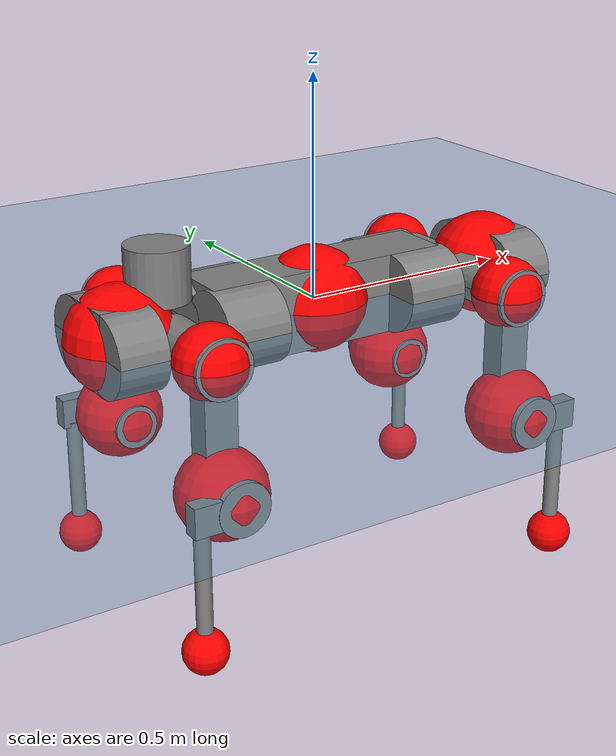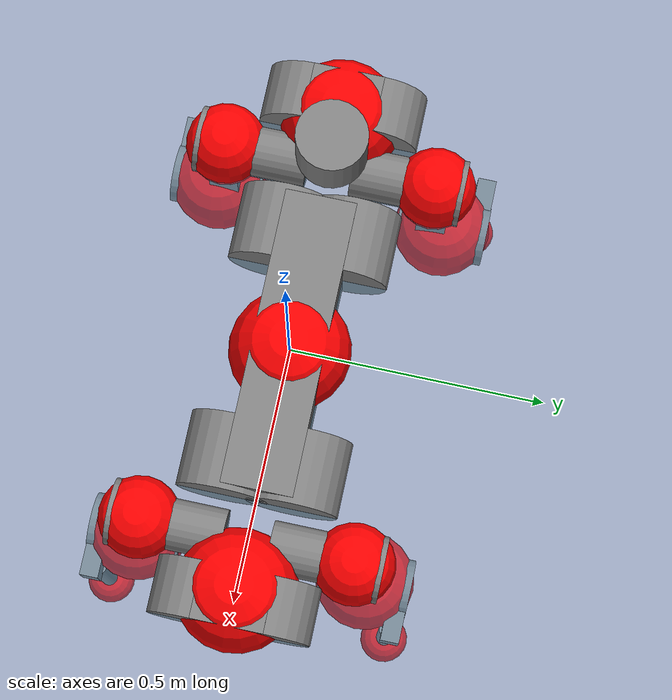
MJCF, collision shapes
<mujoco model="anymal_c">
  <compiler angle="radian" assetdir="assets" balanceinertia="true" inertiafromgeom="false"/>

  <option timestep="0.005" density="1.2" viscosity="2e-05"/>

  <size nkey="1"/>

  <visual>
    <quality shadowsize="8192"/>
    <map shadowclip="0.5"/>
  </visual>

  <default>
    <default class="/">
      <material specular="0" shininess="0.25"/>
      <geom contype="0" conaffinity="0" group="1" solref="-1000 -80"/>
      <site size="0.01 0.005 0.005" group="5"/>
      <general forcelimited="true" forcerange="-80 80" biastype="affine" gainprm="80" biasprm="0 -80 -2"/>
      <default class="anymal_c">
        <joint armature="0.01" damping="0.01" frictionloss="0.1"/>
        <default class="visual">
          <geom type="mesh" group="2"/>
          <default class="visual_zflip"/>
        </default>
        <default class="collision">
          <geom type="cylinder" group="3"/>
          <default class="foot">
            <geom size="0.03 0 0" type="sphere" condim="6" priority="1" friction="0.8 0.02 0.01" solimp="0.015 1 0.03"/>
          </default>
        </default>
      </default>
      <default class="reward_collision_sphere">
        <geom group="5" rgba="1 0 0 1"/>
      </default>
    </default>
  </default>

  <asset>
    <texture type="skybox" colorspace="auto" name="//unnamed_texture_0" builtin="gradient" rgb1="0.95 0.95 0.95" rgb2="0.95 0.95 0.95" width="100" height="600"/>
    <texture type="2d" colorspace="auto" name="texplane" builtin="checker" rgb1="0.345 0.575 0.748" rgb2="0.345 0.575 0.748" markrgb="1 1 1" width="512" height="512"/>
    <texture type="2d" colorspace="linear" name="base" file="base.png"/>
    <texture type="2d" colorspace="linear" name="top_shell" file="top_shell.png"/>
    <texture type="2d" colorspace="linear" name="bottom_shell" file="bottom_shell.png"/>
    <texture type="2d" colorspace="linear" name="remote" file="remote.png"/>
    <texture type="2d" colorspace="linear" name="hatch" file="hatch.png"/>
    <texture type="2d" colorspace="linear" name="handle" file="handle.png"/>
    <texture type="2d" colorspace="linear" name="face" file="face.png"/>
    <texture type="2d" colorspace="linear" name="battery" file="battery.png"/>
    <texture type="2d" colorspace="linear" name="lidar_cage" file="lidar_cage.png"/>
    <texture type="2d" colorspace="linear" name="depth_camera" file="depth_camera.png"/>
    <texture type="2d" colorspace="linear" name="wide_angle_camera" file="wide_angle_camera.png"/>
    <texture type="2d" colorspace="linear" name="lidar" file="lidar.png"/>
    <texture type="2d" colorspace="linear" name="drive" file="drive.png"/>
    <texture type="2d" colorspace="linear" name="hip_l" file="hip_l.png"/>
    <texture type="2d" colorspace="linear" name="shank_l" file="shank_l.png"/>
    <texture type="2d" colorspace="linear" name="foot" file="foot.png"/>
    <texture type="2d" colorspace="linear" name="thigh" file="thigh.png"/>
    <texture type="2d" colorspace="linear" name="shank_r" file="shank_r.png"/>
    <texture type="2d" colorspace="linear" name="hip_r" file="hip_r.png"/>
    <material name="MatPlane" class="/" texture="texplane" texuniform="true" texrepeat="2 2" specular="0.9" shininess="0.5"/>
    <material name="black_plastic" class="/" rgba="0.007 0.007 0.007 1"/>
    <material name="green" class="/" rgba="0.052 0.178 0.033 1"/>
    <material name="red" class="/" rgba="0.178 0.006 0.005 1"/>
    <material name="yellow" class="/" rgba="0.178 0.119 0.006 1"/>
    <material name="lwl" class="/" rgba="0.8 0.8 0.8 1"/>
    <material name="base" class="/" texture="base"/>
    <material name="top_shell" class="/" texture="top_shell"/>
    <material name="bottom_shell" class="/" texture="bottom_shell"/>
    <material name="hip_l" class="/" texture="hip_l"/>
    <material name="thigh" class="/" texture="thigh"/>
    <material name="shank_l" class="/" texture="shank_l"/>
    <material name="foot" class="/" texture="foot"/>
    <material name="hip_r" class="/" texture="hip_r"/>
    <material name="shank" class="/" texture="shank_r"/>
    <material name="hatch" class="/" texture="hatch"/>
    <material name="remote" class="/" texture="remote"/>
    <material name="handle" class="/" texture="handle"/>
    <material name="face" class="/" texture="face"/>
    <material name="depth_camera" class="/" texture="depth_camera"/>
    <material name="wide_angle_camera" class="/" texture="wide_angle_camera"/>
    <material name="battery" class="/" texture="battery"/>
    <material name="lidar_cage" class="/" texture="lidar_cage"/>
    <material name="lidar" class="/" texture="lidar"/>
    <material name="drive" class="/" texture="drive"/>
    <mesh name="base_0" class="/" file="base_0.obj"/>
    <mesh name="base_1" class="/" file="base_1.obj"/>
    <mesh name="base_2" class="/" file="base_2.obj"/>
    <mesh name="base_3" class="/" file="base_3.obj"/>
    <mesh name="base_4" class="/" file="base_4.obj"/>
    <mesh name="base_5" class="/" file="base_5.obj"/>
    <mesh name="top_shell" class="/" file="top_shell.obj"/>
    <mesh name="bottom_shell" class="/" file="bottom_shell.obj"/>
    <mesh name="remote" class="/" file="remote.obj"/>
    <mesh name="handle" class="/" file="handle.obj"/>
    <mesh name="face" class="/" file="face.obj"/>
    <mesh name="wide_angle_camera" class="/" file="wide_angle_camera.obj"/>
    <mesh name="depth_camera" class="/" file="depth_camera.obj"/>
    <mesh name="battery" class="/" file="battery.obj"/>
    <mesh name="lidar_cage" class="/" file="lidar_cage.obj"/>
    <mesh name="lidar" class="/" file="lidar.obj"/>
    <mesh name="drive" class="/" file="drive.obj"/>
    <mesh name="hip_l" class="/" file="hip_l.obj"/>
    <mesh name="thigh" class="/" file="thigh.obj"/>
    <mesh name="shank_l" class="/" file="shank_l.obj"/>
    <mesh name="foot" class="/" file="foot.obj"/>
    <mesh name="hip_r" class="/" file="hip_r.obj"/>
    <mesh name="hatch" class="/" file="hatch.obj"/>
    <mesh name="shank_r" class="/" file="shank_r.obj"/>
  </asset>

  <worldbody>
    <geom name="floor" class="/" size="100 100 0.125" type="plane" group="0" material="MatPlane"/>
    <light name="toplight_shadow" class="/" pos="0 0 5" dir="0.0990148 0.0990148 -0.990148" type="directional" ambient="0.04 0.04 0.04" diffuse="0.55 0.55 0.55" specular="0.12 0.12 0.12"/>
    <light name="toplight_fill" class="/" pos="0 0 5" dir="0.0990148 0.0990148 -0.990148" type="directional" castshadow="false" ambient="0.04 0.04 0.04" diffuse="0.3 0.3 0.3" specular="0.08 0.08 0.08"/>
    <body name="trunk" childclass="anymal_c" pos="0.000680027 0.000128391 -0.00101581" quat="1 -0.000429325 -0.000123061 7.197e-05">
      <inertial pos="7.2531e-05 -0.00167826 0.0485315" quat="0.49849 0.500524 0.500692 0.500291" mass="19.6824" diaginertia="0.832045 0.548146 0.193"/>
      <joint name="//unnamed_joint_0" type="free" armature="0" damping="0" frictionloss="0"/>
      <geom name="//unnamed_geom_1" class="visual" material="green" mesh="base_0"/>
      <geom name="//unnamed_geom_2" class="visual" material="yellow" mesh="base_1"/>
      <geom name="//unnamed_geom_3" class="visual" material="red" mesh="base_2"/>
      <geom name="//unnamed_geom_4" class="visual" material="black_plastic" mesh="base_3"/>
      <geom name="//unnamed_geom_5" class="visual" material="lwl" mesh="base_4"/>
      <geom name="//unnamed_geom_6" class="visual" material="base" mesh="base_5"/>
      <geom name="trunk_1" class="collision" size="0.290539 0.0701301 0.0901673" type="box"/>
      <geom name="trunk_2" class="collision" size="0.0901673 0.0726347" pos="0.229243 0.0681973 0" quat="0.707107 0 0.707107 0"/>
      <geom name="trunk_3" class="collision" size="0.0901673 0.0726347" pos="-0.229243 0.0681973 0" quat="0.707107 0 0.707107 0"/>
      <geom name="trunk_4" class="collision" size="0.0901673 0.0726347" pos="0.229243 -0.0681973 0" quat="0.707107 0 0.707107 0"/>
      <geom name="trunk_5" class="collision" size="0.0901673 0.0726347" pos="-0.229243 -0.0681973 0" quat="0.707107 0 0.707107 0"/>
      <geom name="//unnamed_geom_12" class="visual" material="top_shell" mesh="top_shell"/>
      <geom name="//unnamed_geom_13" class="visual" material="bottom_shell" mesh="bottom_shell"/>
      <geom name="//unnamed_geom_14" class="visual" material="remote" mesh="remote"/>
      <geom name="//unnamed_geom_15" class="visual" material="handle" mesh="handle"/>
      <geom name="//unnamed_geom_16" class="visual" pos="0.436879 0 0" quat="1 0 0 0" material="face" mesh="face"/>
      <geom name="trunk_6" class="collision" size="0.0551022 0.0701301 0.0901673" pos="0.494849 0 0" type="box"/>
      <geom name="//unnamed_geom_18" class="collision" size="0.0901673 0.0551022" pos="0.494849 0.0681973 0" quat="0.707107 0 0.707107 0"/>
      <geom name="//unnamed_geom_19" class="collision" size="0.0901673 0.0551022" pos="0.494849 -0.0681973 0" quat="0.707107 0 0.707107 0"/>
      <geom name="//unnamed_geom_20" class="visual" pos="0.486572 0 -0.0279556" quat="0.965926 0 0.258819 0" material="depth_camera" mesh="depth_camera"/>
      <geom name="//unnamed_geom_21" class="visual" pos="0.540697 0 0.0146307" material="wide_angle_camera" mesh="wide_angle_camera"/>
      <geom name="//unnamed_geom_22" class="visual_zflip" pos="-0.436879 0 0" quat="0 0 0 1" material="face" mesh="face"/>
      <geom name="trunk_7" class="collision" size="0.0551022 0.0701301 0.0901673" pos="-0.494849 0 0" quat="0 0 0 1" type="box"/>
      <geom name="//unnamed_geom_24" class="collision" size="0.0901673 0.0551022" pos="-0.494849 -0.0681973 0" quat="0 -0.707107 0 0.707107"/>
      <geom name="//unnamed_geom_25" class="collision" size="0.0901673 0.0551022" pos="-0.494849 0.0681973 0" quat="0 -0.707107 0 0.707107"/>
      <geom name="//unnamed_geom_26" class="visual" pos="-0.486572 0 -0.0279556" quat="0 -0.258819 0 0.965926" material="depth_camera" mesh="depth_camera"/>
      <geom name="//unnamed_geom_27" class="visual_zflip" pos="-0.540697 0 0.0146307" quat="0 0 0 1" material="wide_angle_camera" mesh="wide_angle_camera"/>
      <geom name="//unnamed_geom_28" class="visual" material="battery" mesh="battery"/>
      <geom name="//unnamed_geom_29" class="visual" pos="0 0.0734414 0.0289742" quat="0.683013 -0.183013 0.183013 0.683013" material="depth_camera" mesh="depth_camera"/>
      <geom name="//unnamed_geom_30" class="visual" pos="0 -0.0734414 0.0289742" quat="0.683013 0.183013 0.183013 -0.683013" material="depth_camera" mesh="depth_camera"/>
      <geom name="//unnamed_geom_31" class="visual" pos="-0.383653 0 0.0718342" quat="1 0 0 0" material="lidar_cage" mesh="lidar_cage"/>
      <geom name="trunk_8" class="collision" size="0.0701301 0.0601115" pos="-0.383653 0 0.130474"/>
      <geom name="//unnamed_geom_33" class="visual" pos="-0.383653 -3.13291e-05 0.138977" quat="0.707107 0 0 -0.707107" material="lidar" mesh="lidar"/>
      <geom name="//unnamed_geom_34" class="visual" pos="0.316092 0.101323 -5.32824e-11" quat="0.258819 0.965926 0 0" material="drive" mesh="drive"/>
      <geom name="//unnamed_geom_35" class="visual" pos="0.316092 -0.101323 5.32824e-11" quat="0.258819 -0.965926 0 0" material="drive" mesh="drive"/>
      <geom name="//unnamed_geom_36" class="visual" pos="-0.316092 0.101323 5.32824e-11" quat="0 0 0.965926 -0.258819" material="drive" mesh="drive"/>
      <geom name="//unnamed_geom_37" class="visual" pos="-0.316092 -0.101323 -5.32824e-11" quat="0 0 -0.965926 -0.258819" material="drive" mesh="drive"/>
      <geom name="//unnamed_geom_38" class="visual" pos="0.122263 0 0.0713456" quat="1 0 0 0" material="hatch" mesh="hatch"/>
      <geom name="//unnamed_geom_39" class="reward_collision_sphere" size="0.120223"/>
      <geom name="//unnamed_geom_40" class="reward_collision_sphere" size="0.120223" pos="0.474296 0 0"/>
      <geom name="//unnamed_geom_41" class="reward_collision_sphere" size="0.120223" pos="-0.474296 0 0"/>
      <site name="imu" pos="0.271889 0.00773864 0.0356639" size="0.0100186"/>
      <camera name="track" pos="0 -1.9485 0" quat="0.707107 0.707107 0 0" mode="trackcom"/>
      <camera name="ego_camera" pos="0.474296 0 -0.0390935" quat="-0.5 -0.5 0.5 0.5"/>
      <body name="LF_HIP" pos="0.315865 0.101 -6.14942e-05" quat="0.258699 0.965958 9.64828e-05 -5.48581e-05">
        <inertial pos="0.0597046 -0.0152759 -0.00854412" quat="-0.127742 0.709317 -0.135583 0.67983" mass="2.69044" diaginertia="0.00736292 0.00412965 0.00284483"/>
        <joint name="LF_HAA" pos="0 0 0" axis="0.99999 0.00446497 0.000779848" range="-0.721337 0.469711" armature="0.0100548" damping="0.00899732" frictionloss="0.0992378"/>
        <geom name="//unnamed_geom_42" class="visual" pos="0 -3.13436e-06 5.14816e-07" quat="0.258819 -0.965926 0 0" material="hip_l" mesh="hip_l"/>
        <geom name="//unnamed_geom_43" class="visual" pos="0.0631341 -0.0754515 -0.0435848" quat="0.183013 -0.683013 0.683013 0.183013" material="drive" mesh="drive"/>
        <geom name="//unnamed_geom_44" class="collision" size="0.0500929 0.0701301" pos="0.0631341 -0.0116518 -0.00674851" quat="-0.353553 -0.612372 0.612372 -0.353553"/>
        <body name="LF_THIGH" pos="0.0639773 -0.0691831 -0.0412421" quat="0.182683 -0.683619 0.682561 0.182762">
          <inertial pos="0.0328746 0.000179805 -0.240591" quat="0.993292 -0.00935483 -0.08033 0.0826513" mass="3.05096" diaginertia="0.0391532 0.0253218 0.00366383"/>
          <joint name="LF_HFE" pos="0 0 0" axis="1 -0.00023001 9.81961e-05" stiffness="0.00499605" range="-3.11451 3.14007" armature="0.0103484" damping="0.0127783" frictionloss="0.102297"/>
          <geom name="//unnamed_geom_45" class="visual" pos="0.00158658 2.50008e-06 0" quat="0.707107 0 0 -0.707107" material="thigh" mesh="thigh"/>
          <geom name="//unnamed_geom_46" class="collision" size="0.0651208 0.0400743" pos="0.0421596 0 0" quat="0.5 0.5 -0.5 -0.5"/>
          <geom name="//unnamed_geom_47" class="collision" size="0.0375697 0.0300558 0.141577" pos="0.0316197 0 -0.138111" quat="0.707107 0 0 -0.707107" type="box"/>
          <geom name="//unnamed_geom_48" class="visual" pos="0.105715 0 -0.278541" quat="1 0 0 0" material="drive" mesh="drive"/>
          <geom name="//unnamed_geom_49" class="collision" size="0.0500929 0.0701301" pos="0.0319359 0 -0.278541" quat="0.707107 0 0.707107 0"/>
          <geom name="//unnamed_geom_50" class="reward_collision_sphere" size="0.0801487" pos="0.0263498 0 0"/>
          <body name="LF_SHANK" pos="0.1052 0.00118437 -0.279717" quat="1 -0.000163736 8.38813e-05 -0.000170502">
            <inertial pos="0.00571824 -0.0600164 -0.078051" quat="0.992979 -0.115545 -0.00266886 -0.0252112" mass="0.591865" diaginertia="0.0130066 0.00816099 0.000994156"/>
            <joint name="LF_KFE" pos="0 0 0" axis="0.999998 0.000415122 0.00216908" range="-3.13907 3.13551" armature="0.00954588" damping="0.0127149" frictionloss="0.0985792"/>
            <geom name="//unnamed_geom_51" class="visual" pos="0.00051735 0.00275854 0" quat="0.707107 0 0 -0.707107" material="shank_l" mesh="shank_l"/>
            <geom name="LF_kfe_act" class="collision" size="0.0601115 0.0200372" pos="0.0210798 0 0" quat="0.5 0.5 -0.5 -0.5"/>
            <geom name="//unnamed_geom_53" class="collision" size="0.0576059 0.0338127 0.0190353" pos="0.0210798 -0.0560183 0" quat="0.5 0.5 -0.5 -0.5" type="box"/>
            <geom name="//unnamed_geom_54" class="visual" pos="0.0137545 -0.0847961 -0.33031" quat="0.382683 0 0 -0.92388" material="foot" mesh="foot"/>
            <geom name="LF_calf" class="collision" size="0.0175325 0.141515" pos="0.0137546 -0.0856851 -0.165155" quat="0.707107 0 0 -0.707107"/>
            <geom name="LF_foot" class="foot" size="0.0297819" pos="0.0137546 -0.0856851 -0.30832" quat="0.707107 0 0 -0.707107"/>
            <geom name="//unnamed_geom_57" class="reward_collision_sphere" size="0.100186" pos="-0.0526996 0 0"/>
            <geom name="//unnamed_geom_58" class="reward_collision_sphere" size="0.0500929" pos="0.0137546 -0.0856851 -0.30832"/>
            <site name="LF_foot" class="foot" pos="0.0137546 -0.0856851 -0.30832" quat="0.707107 0 0 -0.707107" size="0.0100186"/>
          </body>
        </body>
      </body>
      <body name="RF_HIP" pos="0.314695 -0.101552 0.0011474" quat="0.258837 -0.965921 -1.94737e-05 0.000101807">
        <inertial pos="0.0599441 0.0129118 -0.00834634" quat="0.128678 0.686034 0.128974 0.704389" mass="2.78355" diaginertia="0.00753607 0.00442697 0.00291184"/>
        <joint name="RF_HAA" pos="0 0 0" axis="0.999995 0.00301354 0.000481492" range="-0.488048 0.719408" armature="0.0101621" damping="0.00529698" frictionloss="0.0950566"/>
        <geom name="//unnamed_geom_59" class="visual" pos="0 3.13433e-06 5.14815e-07" quat="0.258819 0.965926 0 0" material="hip_r" mesh="hip_r"/>
        <geom name="//unnamed_geom_60" class="visual" pos="0.0631341 0.0754515 -0.0435848" quat="0.183013 0.683013 0.683013 -0.183013" material="drive" mesh="drive"/>
        <geom name="//unnamed_geom_61" class="collision" size="0.0500929 0.0701301" pos="0.0631341 0.0116518 -0.00674851" quat="-0.353553 0.612372 0.612372 0.353553"/>
        <body name="RF_THIGH" pos="0.0629176 0.0714623 -0.0426388" quat="0.182645 0.682919 0.683122 -0.183321">
          <inertial pos="0.0345457 0.000909207 -0.239328" quat="0.992643 -0.00494431 -0.0807583 0.090071" mass="3.12825" diaginertia="0.0394178 0.0258546 0.00382698"/>
          <joint name="RF_HFE" pos="0 0 0" axis="1 0.00019461 -3.43077e-05" stiffness="0.0025744" range="-3.16184 3.13957" armature="0.00999307" damping="0.0107558" frictionloss="0.0953148"/>
          <geom name="//unnamed_geom_62" class="visual" pos="0.00158658 2.50008e-06 0" quat="0.707107 0 0 -0.707107" material="thigh" mesh="thigh"/>
          <geom name="//unnamed_geom_63" class="collision" size="0.0651208 0.0400743" pos="0.0421596 0 0" quat="0.5 0.5 0.5 0.5"/>
          <geom name="//unnamed_geom_64" class="collision" size="0.0375697 0.0300558 0.141577" pos="0.0316197 0 -0.138111" quat="0.707107 0 0 0.707107" type="box"/>
          <geom name="//unnamed_geom_65" class="visual" pos="0.105715 0 -0.278541" quat="1 0 0 0" material="drive" mesh="drive"/>
          <geom name="//unnamed_geom_66" class="collision" size="0.0500929 0.0701301" pos="0.0319359 0 -0.278541" quat="0.707107 0 0.707107 0"/>
          <geom name="//unnamed_geom_67" class="reward_collision_sphere" size="0.0801487" pos="0.0263498 0 0"/>
          <body name="RF_SHANK" pos="0.105797 0.000244591 -0.277732" quat="1 -0.000138598 0.000121435 -2.51791e-05">
            <inertial pos="0.0052286 0.0596547 -0.0787004" quat="0.993133 0.112652 0.00809825 0.0305224" mass="0.596305" diaginertia="0.0132098 0.00829328 0.00101179"/>
            <joint name="RF_KFE" pos="0 0 0" axis="0.999999 0.00109893 -0.00112733" range="-3.17321 3.14053" armature="0.0105998" damping="0.0183379" frictionloss="0.0957027"/>
            <geom name="//unnamed_geom_68" class="visual" pos="0.000517347 -0.00275853 0" quat="0.707107 0 0 0.707107" material="shank" mesh="shank_r"/>
            <geom name="RF_kfe_act" class="collision" size="0.0601115 0.0200372" pos="0.0210798 0 0" quat="0.5 0.5 0.5 0.5"/>
            <geom name="//unnamed_geom_70" class="collision" size="0.0576059 0.0338127 0.0190353" pos="0.0210798 0.0560183 0" quat="0.5 0.5 0.5 0.5" type="box"/>
            <geom name="//unnamed_geom_71" class="visual" pos="0.0137547 0.0847961 -0.33031" quat="0.382683 0 0 0.92388" material="foot" mesh="foot"/>
            <geom name="RF_calf" class="collision" size="0.0175325 0.141515" pos="0.0137546 0.0856851 -0.165155" quat="0.707107 0 0 0.707107"/>
            <geom name="RF_foot" class="foot" size="0.0279825" pos="0.0137546 0.0856851 -0.30832" quat="0.707107 0 0 0.707107"/>
            <geom name="//unnamed_geom_74" class="reward_collision_sphere" size="0.100186" pos="-0.0526996 0 0"/>
            <geom name="//unnamed_geom_75" class="reward_collision_sphere" size="0.0500929" pos="0.0137546 0.0856851 -0.30832"/>
            <site name="RF_foot" class="foot" pos="0.0137546 0.0856851 -0.30832" quat="0.707107 0 0 0.707107" size="0.0100186"/>
          </body>
        </body>
      </body>
      <body name="LH_HIP" pos="-0.313726 0.101179 -0.000532043" quat="5.27588e-05 2.48679e-05 0.965944 -0.258751">
        <inertial pos="0.059771 0.0149101 -0.010301" quat="0.131914 0.676559 0.12901 0.712897" mass="2.86705" diaginertia="0.00805088 0.00444993 0.00302944"/>
        <joint name="LH_HAA" pos="0 0 0" axis="0.999973 0.0022345 -0.00706108" range="-0.486858 0.701768" armature="0.0097995" damping="0" frictionloss="0.100236"/>
        <geom name="//unnamed_geom_76" class="visual" pos="0 3.13433e-06 5.14815e-07" quat="-0.258819 -0.965926 0 0" material="hip_r" mesh="hip_r"/>
        <geom name="//unnamed_geom_77" class="visual" pos="0.0631341 0.0754515 -0.0435848" quat="0.183013 0.683013 0.683013 -0.183013" material="drive" mesh="drive"/>
        <geom name="//unnamed_geom_78" class="collision" size="0.0500929 0.0701301" pos="0.0631341 0.0116518 -0.00674851" quat="-0.353553 0.612372 0.612372 0.353553"/>
        <body name="LH_THIGH" pos="0.0628258 0.0713966 -0.0424011" quat="0.183139 0.683281 0.68261 -0.183389">
          <inertial pos="0.0301779 -0.00106055 -0.242038" quat="0.992708 -0.00546845 -0.081668 0.0884935" mass="3.1091" diaginertia="0.0380174 0.0262227 0.00366364"/>
          <joint name="LH_HFE" pos="0 0 0" axis="1 0.000435529 -0.000797503" stiffness="0.00318205" range="-3.12924 3.13675" armature="0.00990937" damping="0.00468735" frictionloss="0.100807"/>
          <geom name="//unnamed_geom_79" class="visual" pos="0.00158658 2.50008e-06 0" quat="0.707107 0 0 -0.707107" material="thigh" mesh="thigh"/>
          <geom name="//unnamed_geom_80" class="collision" size="0.0651208 0.0400743" pos="0.0421596 0 0" quat="0.5 0.5 -0.5 -0.5"/>
          <geom name="//unnamed_geom_81" class="collision" size="0.0375697 0.0300558 0.141577" pos="0.0316197 0 -0.138111" quat="0.707107 0 0 -0.707107" type="box"/>
          <geom name="//unnamed_geom_82" class="visual" pos="0.105715 0 -0.278541" quat="1 0 0 0" material="drive" mesh="drive"/>
          <geom name="//unnamed_geom_83" class="collision" size="0.0500929 0.0701301" pos="0.0319359 0 -0.278541" quat="0.707107 0 0.707107 0"/>
          <geom name="//unnamed_geom_84" class="reward_collision_sphere" size="0.0801487" pos="0.0263498 0 0"/>
          <body name="LH_SHANK" pos="0.106332 -0.00170231 -0.277244" quat="1 -5.17072e-05 -4.396e-05 5.10154e-05">
            <inertial pos="0.00509672 0.0611533 -0.0778363" quat="0.992961 0.115729 -0.000936989 0.0251754" mass="0.610604" diaginertia="0.0135766 0.00850669 0.00101603"/>
            <joint name="LH_KFE" pos="0 0 0" axis="0.999984 -0.00504713 -0.00238532" range="-3.1174 3.13378" armature="0.0109768" damping="0.0175721" frictionloss="0.0940483"/>
            <geom name="//unnamed_geom_85" class="visual" pos="0.000517347 -0.00275853 0" quat="-0.707107 0 0 -0.707107" material="shank" mesh="shank_r"/>
            <geom name="LH_kfe_act" class="collision" size="0.0601115 0.0200372" pos="0.0210798 0 0" quat="0.5 0.5 -0.5 -0.5"/>
            <geom name="//unnamed_geom_87" class="collision" size="0.0576059 0.0338127 0.0190353" pos="0.0210798 0.0560183 0" quat="0.5 0.5 -0.5 -0.5" type="box"/>
            <geom name="//unnamed_geom_88" class="visual" pos="0.0137547 0.0847961 -0.33031" quat="-0.382683 0 0 -0.92388" material="foot" mesh="foot"/>
            <geom name="LH_calf" class="collision" size="0.0175325 0.141515" pos="0.0137546 0.0856851 -0.165155" quat="0.707107 0 0 -0.707107"/>
            <geom name="LH_foot" class="foot" size="0.0299864" pos="0.0137546 0.0856851 -0.30832" quat="0.707107 0 0 -0.707107"/>
            <geom name="//unnamed_geom_91" class="reward_collision_sphere" size="0.100186" pos="-0.0526996 0 0"/>
            <geom name="//unnamed_geom_92" class="reward_collision_sphere" size="0.0500929" pos="0.0137546 0.0856851 -0.30832"/>
            <site name="LH_foot" class="foot" pos="0.0137546 0.0856851 -0.30832" quat="0.707107 0 0 -0.707107" size="0.0100186"/>
          </body>
        </body>
      </body>
      <body name="RH_HIP" pos="-0.313653 -0.101305 -0.000156522" quat="-0.000148509 -5.69871e-05 -0.965926 -0.258819">
        <inertial pos="0.0599736 -0.0155719 -0.0104523" quat="-0.12811 0.717208 -0.139272 0.670674" mass="2.7566" diaginertia="0.00739885 0.00417527 0.00285396"/>
        <joint name="RH_HAA" pos="0 0 0" axis="0.999943 -0.00944524 0.00491884" range="-0.758298 0.481712" armature="0.0104755" damping="0.0118554" frictionloss="0.100009"/>
        <geom name="//unnamed_geom_93" class="visual" pos="0 -3.13436e-06 5.14816e-07" quat="-0.258819 0.965926 0 0" material="hip_l" mesh="hip_l"/>
        <geom name="//unnamed_geom_94" class="visual" pos="0.0631341 -0.0754515 -0.0435848" quat="-0.183013 0.683013 -0.683013 -0.183013" material="drive" mesh="drive"/>
        <geom name="//unnamed_geom_95" class="collision" size="0.0500929 0.0701301" pos="0.0631341 -0.0116518 -0.00674851" quat="0.353553 0.612372 -0.612372 0.353553"/>
        <body name="RH_THIGH" pos="0.0651694 -0.0713922 -0.0428076" quat="-0.183198 0.682831 -0.683263 -0.182572">
          <inertial pos="0.032784 -0.00038694 -0.240514" quat="0.993144 -0.00492983 -0.0809532 0.0841907" mass="3.06142" diaginertia="0.0389913 0.0260846 0.00371376"/>
          <joint name="RH_HFE" pos="0 0 0" axis="0.999999 0.00100064 -0.00109516" stiffness="0.000198413" range="-3.14509 3.1583" armature="0.0100085" damping="0.00535221" frictionloss="0.0993616"/>
          <geom name="//unnamed_geom_96" class="visual" pos="0.00158658 2.50008e-06 0" quat="0.707107 0 0 -0.707107" material="thigh" mesh="thigh"/>
          <geom name="//unnamed_geom_97" class="collision" size="0.0651208 0.0400743" pos="0.0421596 0 0" quat="0.5 0.5 0.5 0.5"/>
          <geom name="//unnamed_geom_98" class="collision" size="0.0375697 0.0300558 0.141577" pos="0.0316197 0 -0.138111" quat="0.707107 0 0 0.707107" type="box"/>
          <geom name="//unnamed_geom_99" class="visual" pos="0.105715 0 -0.278541" quat="1 0 0 0" material="drive" mesh="drive"/>
          <geom name="//unnamed_geom_100" class="collision" size="0.0500929 0.0701301" pos="0.0319359 0 -0.278541" quat="0.707107 0 0.707107 0"/>
          <geom name="//unnamed_geom_101" class="reward_collision_sphere" size="0.0801487" pos="0.0263498 0 0"/>
          <body name="RH_SHANK" pos="0.105518 0.00161431 -0.27789" quat="1 0.000699945 -0.000316691 0.000479225">
            <inertial pos="0.00702395 -0.058631 -0.0796193" quat="0.993194 -0.11353 0.00232674 -0.0259262" mass="0.601838" diaginertia="0.013395 0.00811301 0.00100871"/>
            <joint name="RH_KFE" pos="0 0 0" axis="0.999998 0.000702983 -0.00173603" stiffness="0.000256672" range="-3.12405 3.16964" armature="0.00998436" damping="0.0182382" frictionloss="0.0956057"/>
            <geom name="//unnamed_geom_102" class="visual" pos="0.00051735 0.00275854 0" quat="0.707107 0 0 -0.707107" material="shank_l" mesh="shank_l"/>
            <geom name="RH_kfe_act" class="collision" size="0.0601115 0.0200372" pos="0.0210798 0 0" quat="0.5 0.5 0.5 0.5"/>
            <geom name="//unnamed_geom_104" class="collision" size="0.0576059 0.0338127 0.0190353" pos="0.0210798 -0.0560183 0" quat="0.5 0.5 0.5 0.5" type="box"/>
            <geom name="//unnamed_geom_105" class="visual" pos="0.0137545 -0.0847961 -0.33031" quat="0.382683 0 0 -0.92388" material="foot" mesh="foot"/>
            <geom name="RH_calf" class="collision" size="0.0175325 0.141515" pos="0.0137546 -0.0856851 -0.165155" quat="0.707107 0 0 0.707107"/>
            <geom name="RH_foot" class="foot" size="0.0282516" pos="0.0137546 -0.0856851 -0.30832" quat="0.707107 0 0 0.707107"/>
            <geom name="//unnamed_geom_108" class="reward_collision_sphere" size="0.100186" pos="-0.0526996 0 0"/>
            <geom name="//unnamed_geom_109" class="reward_collision_sphere" size="0.0500929" pos="0.0137546 -0.0856851 -0.30832"/>
            <site name="RH_foot" class="foot" pos="0.0137546 -0.0856851 -0.30832" quat="0.707107 0 0 0.707107" size="0.0100186"/>
          </body>
        </body>
      </body>
    </body>
  </worldbody>

  <contact>
    <pair class="/" geom1="floor" geom2="LF_foot" name="//unnamed_contact_0"/>
    <pair class="/" geom1="floor" geom2="RF_foot" name="//unnamed_contact_1"/>
    <pair class="/" geom1="floor" geom2="LH_foot" name="//unnamed_contact_2"/>
    <pair class="/" geom1="floor" geom2="RH_foot" name="//unnamed_contact_3"/>
  </contact>

  <actuator>
    <general name="LF_HAA" class="/" joint="LF_HAA" forcerange="-78.7353 78.7353" gainprm="81.5842" biasprm="0 -81.5842 -1.94912"/>
    <general name="LF_HFE" class="/" joint="LF_HFE" forcerange="-74.0412 74.0412" gainprm="81.5842" biasprm="0 -81.5842 -1.94912"/>
    <general name="LF_KFE" class="/" joint="LF_KFE" forcerange="-83.2555 83.2555" gainprm="81.5842" biasprm="0 -81.5842 -1.94912"/>
    <general name="RF_HAA" class="/" joint="RF_HAA" forcerange="-81.474 81.474" gainprm="81.5842" biasprm="0 -81.5842 -1.94912"/>
    <general name="RF_HFE" class="/" joint="RF_HFE" forcerange="-83.8116 83.8116" gainprm="81.5842" biasprm="0 -81.5842 -1.94912"/>
    <general name="RF_KFE" class="/" joint="RF_KFE" forcerange="-80.7339 80.7339" gainprm="81.5842" biasprm="0 -81.5842 -1.94912"/>
    <general name="LH_HAA" class="/" joint="LH_HAA" forcerange="-80.2245 80.2245" gainprm="81.5842" biasprm="0 -81.5842 -1.94912"/>
    <general name="LH_HFE" class="/" joint="LH_HFE" forcerange="-79.26 79.26" gainprm="81.5842" biasprm="0 -81.5842 -1.94912"/>
    <general name="LH_KFE" class="/" joint="LH_KFE" forcerange="-77.9084 77.9084" gainprm="81.5842" biasprm="0 -81.5842 -1.94912"/>
    <general name="RH_HAA" class="/" joint="RH_HAA" forcerange="-79.1354 79.1354" gainprm="81.5842" biasprm="0 -81.5842 -1.94912"/>
    <general name="RH_HFE" class="/" joint="RH_HFE" forcerange="-85.2385 85.2385" gainprm="81.5842" biasprm="0 -81.5842 -1.94912"/>
    <general name="RH_KFE" class="/" joint="RH_KFE" forcerange="-79.0552 79.0552" gainprm="81.5842" biasprm="0 -81.5842 -1.94912"/>
  </actuator>

  <sensor>
    <gyro site="imu" name="imu_angular_velocity"/>
    <velocimeter site="imu" name="imu_linear_velocity"/>
    <framelinvel objtype="site" objname="LF_foot" name="LF_foot_global_linear_velocity"/>
    <framelinvel objtype="site" objname="RF_foot" name="RF_foot_global_linear_velocity"/>
    <framelinvel objtype="site" objname="LH_foot" name="LH_foot_global_linear_velocity"/>
    <framelinvel objtype="site" objname="RH_foot" name="RH_foot_global_linear_velocity"/>
  </sensor>

  <keyframe>
    <key name="home" qpos="0 0 0.55 1 0 0 0 0 0.4 -0.8 0 -0.4 0.8 0 -0.4 0.8 0 0.4 -0.8"/>
  </keyframe>
</mujoco>
